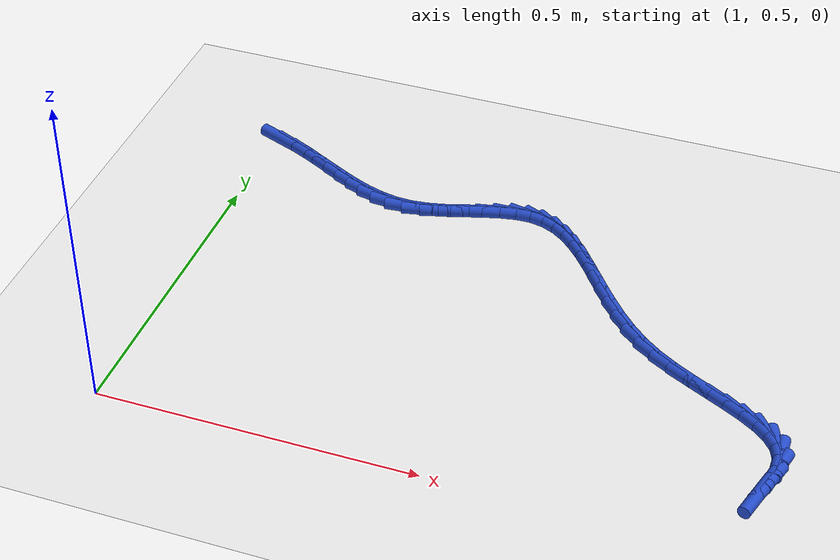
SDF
<sdf version="1.6">
 <world name="default">
  <model name="ground_plane">
   <static>1</static>
   <link name="link">
    <collision name="collision">
     <geometry><plane><normal>0 0 1</normal><size>100 100</size></plane></geometry>
     <surface><friction><ode><mu>100</mu><mu2>50</mu2></ode></friction></surface>
    </collision>
    <visual name="visual">
     <cast_shadows>0</cast_shadows>
     <geometry><plane><normal>0 0 1</normal><size>100 100</size></plane></geometry>
     <material>
      <script><uri>file://media/materials/scripts/gazebo.material</uri><name>Gazebo/WhiteGlow</name></script>
     </material>
    </visual>
   </link>
  </model>
  <model name="line">
   <link name="link_59">
    <pose>1.0108993390573935 1.1590592407978217 0.01 0 1.57 -0.37099792617253613</pose>
    <collision name="collision">
     <geometry><cylinder><radius>0.01</radius><length>0.08</length></cylinder></geometry>
    </collision>
    <visual name="visual">
     <material>
      <script><name>Gazebo/Blue</name><uri>file://media/materials/scripts/gazebo.material</uri></script>
     </material>
     <geometry><cylinder><radius>0.01</radius><length>0.08</length></cylinder></geometry>
    </visual>
   </link>
   <link name="link_60">
    <pose>1.0410628099872403 1.1473252989424036 0.01 0 1.57 -0.4276714451687227</pose>
    <collision name="collision">
     <geometry><cylinder><radius>0.01</radius><length>0.08</length></cylinder></geometry>
    </collision>
    <visual name="visual">
     <material>
      <script><name>Gazebo/Blue</name><uri>file://media/materials/scripts/gazebo.material</uri></script>
     </material>
     <geometry><cylinder><radius>0.01</radius><length>0.08</length></cylinder></geometry>
    </visual>
   </link>
   <link name="link_61">
    <pose>1.0697600348688074 1.13424494033519 0.01 0 1.57 -0.4651426393354473</pose>
    <collision name="collision">
     <geometry><cylinder><radius>0.01</radius><length>0.08</length></cylinder></geometry>
    </collision>
    <visual name="visual">
     <material>
      <script><name>Gazebo/Blue</name><uri>file://media/materials/scripts/gazebo.material</uri></script>
     </material>
     <geometry><cylinder><radius>0.01</radius><length>0.08</length></cylinder></geometry>
    </visual>
   </link>
   <link name="link_62">
    <pose>1.0972642482409847 1.1204413956184176 0.01 0 1.57 -0.48185883364186716</pose>
    <collision name="collision">
     <geometry><cylinder><radius>0.01</radius><length>0.08</length></cylinder></geometry>
    </collision>
    <visual name="visual">
     <material>
      <script><name>Gazebo/Blue</name><uri>file://media/materials/scripts/gazebo.material</uri></script>
     </material>
     <geometry><cylinder><radius>0.01</radius><length>0.08</length></cylinder></geometry>
    </visual>
   </link>
   <link name="link_63">
    <pose>1.1238492018678674 1.1065381087761605 0.01 0 1.57 -0.4762081415095008</pose>
    <collision name="collision">
     <geometry><cylinder><radius>0.01</radius><length>0.08</length></cylinder></geometry>
    </collision>
    <visual name="visual">
     <material>
      <script><name>Gazebo/Blue</name><uri>file://media/materials/scripts/gazebo.material</uri></script>
     </material>
     <geometry><cylinder><radius>0.01</radius><length>0.08</length></cylinder></geometry>
    </visual>
   </link>
   <link name="link_64">
    <pose>1.1497886475135508 1.093158523792494 0.01 0 1.57 -0.4462460341428907</pose>
    <collision name="collision">
     <geometry><cylinder><radius>0.01</radius><length>0.08</length></cylinder></geometry>
    </collision>
    <visual name="visual">
     <material>
      <script><name>Gazebo/Blue</name><uri>file://media/materials/scripts/gazebo.material</uri></script>
     </material>
     <geometry><cylinder><radius>0.01</radius><length>0.08</length></cylinder></geometry>
    </visual>
   </link>
   <link name="link_65">
    <pose>1.17535633694213 1.080926084651491 0.01 0 1.57 -0.3897450499874253</pose>
    <collision name="collision">
     <geometry><cylinder><radius>0.01</radius><length>0.08</length></cylinder></geometry>
    </collision>
    <visual name="visual">
     <material>
      <script><name>Gazebo/Blue</name><uri>file://media/materials/scripts/gazebo.material</uri></script>
     </material>
     <geometry><cylinder><radius>0.01</radius><length>0.08</length></cylinder></geometry>
    </visual>
   </link>
   <link name="link_66">
    <pose>1.2008260219176996 1.0704642353372267 0.01 0 1.57 -0.3047884634918579</pose>
    <collision name="collision">
     <geometry><cylinder><radius>0.01</radius><length>0.08</length></cylinder></geometry>
    </collision>
    <visual name="visual">
     <material>
      <script><name>Gazebo/Blue</name><uri>file://media/materials/scripts/gazebo.material</uri></script>
     </material>
     <geometry><cylinder><radius>0.01</radius><length>0.08</length></cylinder></geometry>
    </visual>
   </link>
   <link name="link_67">
    <pose>1.226471454204355 1.0623964198337745 0.01 0 1.57 -0.19117359363224684</pose>
    <collision name="collision">
     <geometry><cylinder><radius>0.01</radius><length>0.08</length></cylinder></geometry>
    </collision>
    <visual name="visual">
     <material>
      <script><name>Gazebo/Blue</name><uri>file://media/materials/scripts/gazebo.material</uri></script>
     </material>
     <geometry><cylinder><radius>0.01</radius><length>0.08</length></cylinder></geometry>
    </visual>
   </link>
   <link name="link_68">
    <pose>1.2525663855661913 1.0573460821252094 0.01 0 1.57 -0.05250618684125274</pose>
    <collision name="collision">
     <geometry><cylinder><radius>0.01</radius><length>0.08</length></cylinder></geometry>
    </collision>
    <visual name="visual">
     <material>
      <script><name>Gazebo/Blue</name><uri>file://media/materials/scripts/gazebo.material</uri></script>
     </material>
     <geometry><cylinder><radius>0.01</radius><length>0.08</length></cylinder></geometry>
    </visual>
   </link>
   <link name="link_69">
    <pose>1.2793845677673032 1.055936666195605 0.01 0 1.57 0.10031410568517572</pose>
    <collision name="collision">
     <geometry><cylinder><radius>0.01</radius><length>0.08</length></cylinder></geometry>
    </collision>
    <visual name="visual">
     <material>
      <script><name>Gazebo/Blue</name><uri>file://media/materials/scripts/gazebo.material</uri></script>
     </material>
     <geometry><cylinder><radius>0.01</radius><length>0.08</length></cylinder></geometry>
    </visual>
   </link>
   <link name="link_70">
    <pose>1.3071793977540873 1.0587342700308249 0.01 0 1.57 0.22166899677190446</pose>
    <collision name="collision">
     <geometry><cylinder><radius>0.01</radius><length>0.08</length></cylinder></geometry>
    </collision>
    <visual name="visual">
     <material>
      <script><name>Gazebo/Blue</name><uri>file://media/materials/scripts/gazebo.material</uri></script>
     </material>
     <geometry><cylinder><radius>0.01</radius><length>0.08</length></cylinder></geometry>
    </visual>
   </link>
   <link name="link_71">
    <pose>1.3358071530221405 1.0651861797633229 0.01 0 1.57 0.2866664481189809</pose>
    <collision name="collision">
     <geometry><cylinder><radius>0.01</radius><length>0.08</length></cylinder></geometry>
    </collision>
    <visual name="visual">
     <material>
      <script><name>Gazebo/Blue</name><uri>file://media/materials/scripts/gazebo.material</uri></script>
     </material>
     <geometry><cylinder><radius>0.01</radius><length>0.08</length></cylinder></geometry>
    </visual>
   </link>
   <link name="link_72">
    <pose>1.3647628575318913 1.0737219153687512 0.01 0 1.57 0.3036060930274469</pose>
    <collision name="collision">
     <geometry><cylinder><radius>0.01</radius><length>0.08</length></cylinder></geometry>
    </collision>
    <visual name="visual">
     <material>
      <script><name>Gazebo/Blue</name><uri>file://media/materials/scripts/gazebo.material</uri></script>
     </material>
     <geometry><cylinder><radius>0.01</radius><length>0.08</length></cylinder></geometry>
    </visual>
   </link>
   <link name="link_73">
    <pose>1.3935283737630222 1.0827339167436134 0.01 0 1.57 0.2738246522989612</pose>
    <collision name="collision">
     <geometry><cylinder><radius>0.01</radius><length>0.08</length></cylinder></geometry>
    </collision>
    <visual name="visual">
     <material>
      <script><name>Gazebo/Blue</name><uri>file://media/materials/scripts/gazebo.material</uri></script>
     </material>
     <geometry><cylinder><radius>0.01</radius><length>0.08</length></cylinder></geometry>
    </visual>
   </link>
   <link name="link_74">
    <pose>1.4215855641952166 1.0906146237844156 0.01 0 1.57 0.18934476163672995</pose>
    <collision name="collision">
     <geometry><cylinder><radius>0.01</radius><length>0.08</length></cylinder></geometry>
    </collision>
    <visual name="visual">
     <material>
      <script><name>Gazebo/Blue</name><uri>file://media/materials/scripts/gazebo.material</uri></script>
     </material>
     <geometry><cylinder><radius>0.01</radius><length>0.08</length></cylinder></geometry>
    </visual>
   </link>
   <link name="link_75">
    <pose>1.4484162913081575 1.0957564763876617 0.01 0 1.57 0.03176712716537184</pose>
    <collision name="collision">
     <geometry><cylinder><radius>0.01</radius><length>0.08</length></cylinder></geometry>
    </collision>
    <visual name="visual">
     <material>
      <script><name>Gazebo/Blue</name><uri>file://media/materials/scripts/gazebo.material</uri></script>
     </material>
     <geometry><cylinder><radius>0.01</radius><length>0.08</length></cylinder></geometry>
    </visual>
   </link>
   <link name="link_76">
    <pose>1.4735031208162366 1.096553681075332 0.01 0 1.57 -0.19524741962398884</pose>
    <collision name="collision">
     <geometry><cylinder><radius>0.01</radius><length>0.08</length></cylinder></geometry>
    </collision>
    <visual name="visual">
     <material>
      <script><name>Gazebo/Blue</name><uri>file://media/materials/scripts/gazebo.material</uri></script>
     </material>
     <geometry><cylinder><radius>0.01</radius><length>0.08</length></cylinder></geometry>
    </visual>
   </link>
   <link name="link_77">
    <pose>1.4965644599482912 1.0919929117527956 0.01 0 1.57 -0.41830416688461675</pose>
    <collision name="collision">
     <geometry><cylinder><radius>0.01</radius><length>0.08</length></cylinder></geometry>
    </collision>
    <visual name="visual">
     <material>
      <script><name>Gazebo/Blue</name><uri>file://media/materials/scripts/gazebo.material</uri></script>
     </material>
     <geometry><cylinder><radius>0.01</radius><length>0.08</length></cylinder></geometry>
    </visual>
   </link>
   <link name="link_78">
    <pose>1.5178957043495744 1.0825103191833079 0.01 0 1.57 -0.6027049485236178</pose>
    <collision name="collision">
     <geometry><cylinder><radius>0.01</radius><length>0.08</length></cylinder></geometry>
    </collision>
    <visual name="visual">
     <material>
      <script><name>Gazebo/Blue</name><uri>file://media/materials/scripts/gazebo.material</uri></script>
     </material>
     <geometry><cylinder><radius>0.01</radius><length>0.08</length></cylinder></geometry>
    </visual>
   </link>
   <link name="link_79">
    <pose>1.537878852255092 1.0687596121366774 0.01 0 1.57 -0.7400241955304039</pose>
    <collision name="collision">
     <geometry><cylinder><radius>0.01</radius><length>0.08</length></cylinder></geometry>
    </collision>
    <visual name="visual">
     <material>
      <script><name>Gazebo/Blue</name><uri>file://media/materials/scripts/gazebo.material</uri></script>
     </material>
     <geometry><cylinder><radius>0.01</radius><length>0.08</length></cylinder></geometry>
    </visual>
   </link>
   <link name="link_80">
    <pose>1.5568959018998496 1.0513944993827125 0.01 0 1.57 -0.8341963551185708</pose>
    <collision name="collision">
     <geometry><cylinder><radius>0.01</radius><length>0.08</length></cylinder></geometry>
    </collision>
    <visual name="visual">
     <material>
      <script><name>Gazebo/Blue</name><uri>file://media/materials/scripts/gazebo.material</uri></script>
     </material>
     <geometry><cylinder><radius>0.01</radius><length>0.08</length></cylinder></geometry>
    </visual>
   </link>
   <link name="link_81">
    <pose>1.5753288515188526 1.0310686896912211 0.01 0 1.57 -0.89270725116071</pose>
    <collision name="collision">
     <geometry><cylinder><radius>0.01</radius><length>0.08</length></cylinder></geometry>
    </collision>
    <visual name="visual">
     <material>
      <script><name>Gazebo/Blue</name><uri>file://media/materials/scripts/gazebo.material</uri></script>
     </material>
     <geometry><cylinder><radius>0.01</radius><length>0.08</length></cylinder></geometry>
    </visual>
   </link>
   <link name="link_82">
    <pose>1.5935596993471068 1.0084358918320127 0.01 0 1.57 -0.9221452233148755</pose>
    <collision name="collision">
     <geometry><cylinder><radius>0.01</radius><length>0.08</length></cylinder></geometry>
    </collision>
    <visual name="visual">
     <material>
      <script><name>Gazebo/Blue</name><uri>file://media/materials/scripts/gazebo.material</uri></script>
     </material>
     <geometry><cylinder><radius>0.01</radius><length>0.08</length></cylinder></geometry>
    </visual>
   </link>
   <link name="link_83">
    <pose>1.6119704436196178 0.9841498145748949 0.01 0 1.57 -0.9270825643079603</pose>
    <collision name="collision">
     <geometry><cylinder><radius>0.01</radius><length>0.08</length></cylinder></geometry>
    </collision>
    <visual name="visual">
     <material>
      <script><name>Gazebo/Blue</name><uri>file://media/materials/scripts/gazebo.material</uri></script>
     </material>
     <geometry><cylinder><radius>0.01</radius><length>0.08</length></cylinder></geometry>
    </visual>
   </link>
   <link name="link_84">
    <pose>1.630943082571391 0.9588641666896764 0.01 0 1.57 -0.9102173074113217</pose>
    <collision name="collision">
     <geometry><cylinder><radius>0.01</radius><length>0.08</length></cylinder></geometry>
    </collision>
    <visual name="visual">
     <material>
      <script><name>Gazebo/Blue</name><uri>file://media/materials/scripts/gazebo.material</uri></script>
     </material>
     <geometry><cylinder><radius>0.01</radius><length>0.08</length></cylinder></geometry>
    </visual>
   </link>
   <link name="link_85">
    <pose>1.6508596144374326 0.9332326569461659 0.01 0 1.57 -0.872818818554714</pose>
    <collision name="collision">
     <geometry><cylinder><radius>0.01</radius><length>0.08</length></cylinder></geometry>
    </collision>
    <visual name="visual">
     <material>
      <script><name>Gazebo/Blue</name><uri>file://media/materials/scripts/gazebo.material</uri></script>
     </material>
     <geometry><cylinder><radius>0.01</radius><length>0.08</length></cylinder></geometry>
    </visual>
   </link>
   <link name="link_86">
    <pose>1.672102037452747 0.9079089941141711 0.01 0 1.57 -0.8152291456246085</pose>
    <collision name="collision">
     <geometry><cylinder><radius>0.01</radius><length>0.08</length></cylinder></geometry>
    </collision>
    <visual name="visual">
     <material>
      <script><name>Gazebo/Blue</name><uri>file://media/materials/scripts/gazebo.material</uri></script>
     </material>
     <geometry><cylinder><radius>0.01</radius><length>0.08</length></cylinder></geometry>
    </visual>
   </link>
   <link name="link_87">
    <pose>1.6950523498523413 0.8835468869635017 0.01 0 1.57 -0.7374437605789547</pose>
    <collision name="collision">
     <geometry><cylinder><radius>0.01</radius><length>0.08</length></cylinder></geometry>
    </collision>
    <visual name="visual">
     <material>
      <script><name>Gazebo/Blue</name><uri>file://media/materials/scripts/gazebo.material</uri></script>
     </material>
     <geometry><cylinder><radius>0.01</radius><length>0.08</length></cylinder></geometry>
    </visual>
   </link>
   <link name="link_88">
    <pose>1.7200925498712198 0.8608000442639651 0.01 0 1.57 -0.6406871802630099</pose>
    <collision name="collision">
     <geometry><cylinder><radius>0.01</radius><length>0.08</length></cylinder></geometry>
    </collision>
    <visual name="visual">
     <material>
      <script><name>Gazebo/Blue</name><uri>file://media/materials/scripts/gazebo.material</uri></script>
     </material>
     <geometry><cylinder><radius>0.01</radius><length>0.08</length></cylinder></geometry>
    </visual>
   </link>
   <link name="link_89">
    <pose>1.7475825030954937 0.8403031919359382 0.01 0 1.57 -0.5498484005011435</pose>
    <collision name="collision">
     <geometry><cylinder><radius>0.01</radius><length>0.08</length></cylinder></geometry>
    </collision>
    <visual name="visual">
     <material>
      <script><name>Gazebo/Blue</name><uri>file://media/materials/scripts/gazebo.material</uri></script>
     </material>
     <geometry><cylinder><radius>0.01</radius><length>0.08</length></cylinder></geometry>
    </visual>
   </link>
   <link name="link_90">
    <pose>1.7772303807172538 0.8221321071442437 0.01 0 1.57 -0.489826246227489</pose>
    <collision name="collision">
     <geometry><cylinder><radius>0.01</radius><length>0.08</length></cylinder></geometry>
    </collision>
    <visual name="visual">
     <material>
      <script><name>Gazebo/Blue</name><uri>file://media/materials/scripts/gazebo.material</uri></script>
     </material>
     <geometry><cylinder><radius>0.01</radius><length>0.08</length></cylinder></geometry>
    </visual>
   </link>
   <link name="link_91">
    <pose>1.8080019255286102 0.8057257970675474 0.01 0 1.57 -0.45914361027234185</pose>
    <collision name="collision">
     <geometry><cylinder><radius>0.01</radius><length>0.08</length></cylinder></geometry>
    </collision>
    <visual name="visual">
     <material>
      <script><name>Gazebo/Blue</name><uri>file://media/materials/scripts/gazebo.material</uri></script>
     </material>
     <geometry><cylinder><radius>0.01</radius><length>0.08</length></cylinder></geometry>
    </visual>
   </link>
   <link name="link_92">
    <pose>1.838822504159499 0.7904886388404215 0.01 0 1.57 -0.4573487293777927</pose>
    <collision name="collision">
     <geometry><cylinder><radius>0.01</radius><length>0.08</length></cylinder></geometry>
    </collision>
    <visual name="visual">
     <material>
      <script><name>Gazebo/Blue</name><uri>file://media/materials/scripts/gazebo.material</uri></script>
     </material>
     <geometry><cylinder><radius>0.01</radius><length>0.08</length></cylinder></geometry>
    </visual>
   </link>
   <link name="link_93">
    <pose>1.868617483239857 0.7758250095974385 0.01 0 1.57 -0.48757019294206594</pose>
    <collision name="collision">
     <geometry><cylinder><radius>0.01</radius><length>0.08</length></cylinder></geometry>
    </collision>
    <visual name="visual">
     <material>
      <script><name>Gazebo/Blue</name><uri>file://media/materials/scripts/gazebo.material</uri></script>
     </material>
     <geometry><cylinder><radius>0.01</radius><length>0.08</length></cylinder></geometry>
    </visual>
   </link>
   <link name="link_94">
    <pose>1.8963122293996224 0.7611392864731705 0.01 0 1.57 -0.5579689694212654</pose>
    <collision name="collision">
     <geometry><cylinder><radius>0.01</radius><length>0.08</length></cylinder></geometry>
    </collision>
    <visual name="visual">
     <material>
      <script><name>Gazebo/Blue</name><uri>file://media/materials/scripts/gazebo.material</uri></script>
     </material>
     <geometry><cylinder><radius>0.01</radius><length>0.08</length></cylinder></geometry>
    </visual>
   </link>
   <link name="link_95">
    <pose>1.92083210926873 0.7458358466021895 0.01 0 1.57 -0.6837144523140394</pose>
    <collision name="collision">
     <geometry><cylinder><radius>0.01</radius><length>0.08</length></cylinder></geometry>
    </collision>
    <visual name="visual">
     <material>
      <script><name>Gazebo/Blue</name><uri>file://media/materials/scripts/gazebo.material</uri></script>
     </material>
     <geometry><cylinder><radius>0.01</radius><length>0.08</length></cylinder></geometry>
    </visual>
   </link>
   <link name="link_96">
    <pose>1.9411024894771183 0.7293190671190678 0.01 0 1.57 -0.8866227790710869</pose>
    <collision name="collision">
     <geometry><cylinder><radius>0.01</radius><length>0.08</length></cylinder></geometry>
    </collision>
    <visual name="visual">
     <material>
      <script><name>Gazebo/Blue</name><uri>file://media/materials/scripts/gazebo.material</uri></script>
     </material>
     <geometry><cylinder><radius>0.01</radius><length>0.08</length></cylinder></geometry>
    </visual>
   </link>
   <link name="link_97">
    <pose>1.9560487366547232 0.7109933251583774 0.01 0 1.57 -1.1797165528526883</pose>
    <collision name="collision">
     <geometry><cylinder><radius>0.01</radius><length>0.08</length></cylinder></geometry>
    </collision>
    <visual name="visual">
     <material>
      <script><name>Gazebo/Blue</name><uri>file://media/materials/scripts/gazebo.material</uri></script>
     </material>
     <geometry><cylinder><radius>0.01</radius><length>0.08</length></cylinder></geometry>
    </visual>
   </link>
   <link name="link_98">
    <pose>1.9645962174314813 0.6902629978546908 0.01 0 1.57 -1.5248601027865283</pose>
    <collision name="collision">
     <geometry><cylinder><radius>0.01</radius><length>0.08</length></cylinder></geometry>
    </collision>
    <visual name="visual">
     <material>
      <script><name>Gazebo/Blue</name><uri>file://media/materials/scripts/gazebo.material</uri></script>
     </material>
     <geometry><cylinder><radius>0.01</radius><length>0.08</length></cylinder></geometry>
    </visual>
   </link>
   <link name="link_99">
    <pose>1.9656867942096352 0.6665385928766716 0.01 0 1.57 1.3592866164144677</pose>
    <collision name="collision">
     <geometry><cylinder><radius>0.01</radius><length>0.08</length></cylinder></geometry>
    </collision>
    <visual name="visual">
     <material>
      <script><name>Gazebo/Blue</name><uri>file://media/materials/scripts/gazebo.material</uri></script>
     </material>
     <geometry><cylinder><radius>0.01</radius><length>0.08</length></cylinder></geometry>
    </visual>
   </link>
   <link name="link_100">
    <pose>1.959958549360458 0.6398610057375193 0.01 0 1.57 1.2716642886108653</pose>
    <collision name="collision">
     <geometry><cylinder><radius>0.01</radius><length>0.08</length></cylinder></geometry>
    </collision>
    <visual name="visual">
     <material>
      <script><name>Gazebo/Blue</name><uri>file://media/materials/scripts/gazebo.material</uri></script>
     </material>
     <geometry><cylinder><radius>0.01</radius><length>0.08</length></cylinder></geometry>
    </visual>
   </link>
   <link name="link_101">
    <pose>1.9511938225875047 0.6114396723747569 0.01 0 1.57 1.3104079022236583</pose>
    <collision name="collision">
     <geometry><cylinder><radius>0.01</radius><length>0.08</length></cylinder></geometry>
    </collision>
    <visual name="visual">
     <material>
      <script><name>Gazebo/Blue</name><uri>file://media/materials/scripts/gazebo.material</uri></script>
     </material>
     <geometry><cylinder><radius>0.01</radius><length>0.08</length></cylinder></geometry>
    </visual>
   </link>
  </model>
 </world>
</sdf>
